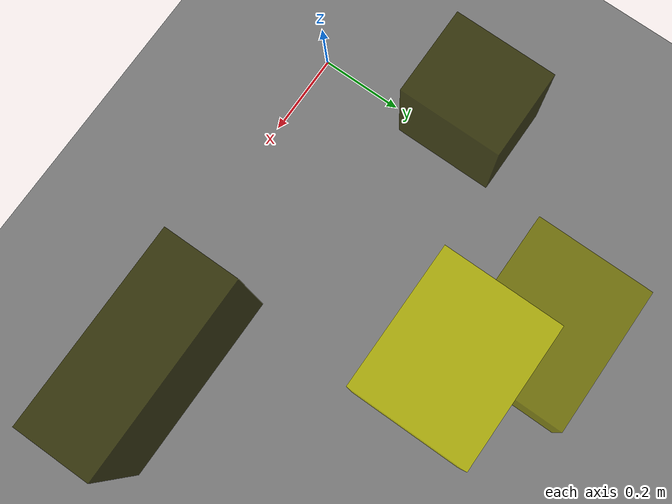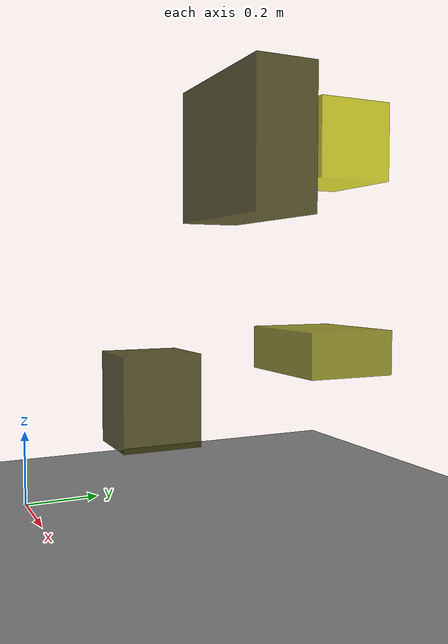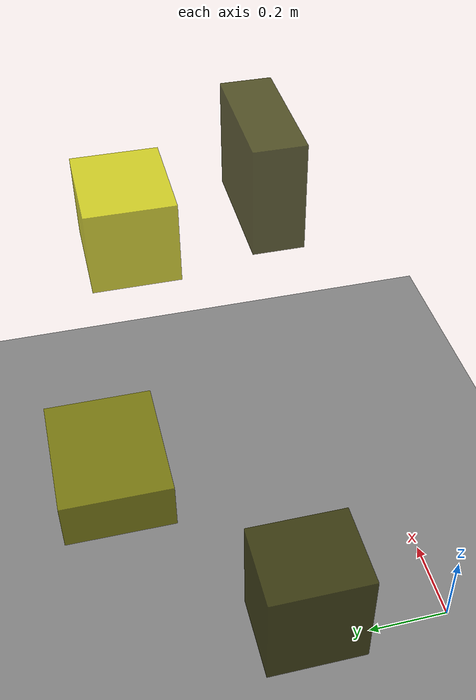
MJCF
<?xml version="1.0"?>
<mujoco model="obstacle_scene">
  <compiler angle="radian" coordinate="local"/>
  <option timestep="0.001" gravity="0 0 -9.81"/>

  <asset>
    <material name="obstacle_mat" rgba="0.8 0.8 0.0 0.8"/>
    <material name="ground_mat" rgba="0.5 0.5 0.5 1"/>
  </asset>

  <worldbody>
    <!-- Ground plane -->
    <geom name="ground" type="plane" size="3 3 0.1" material="ground_mat"/>

    <!-- Obstacles -->
    <body name="obstacle_0" pos="-0.028382 0.372980 0.262439">
      <geom name="obs_0" type="box" size="0.100515 0.116724 0.135299" rgba="0.2 0.2 0.0 0.8"/>
    </body>
    <body name="obstacle_1" pos="0.300554 0.743164 0.420252">
      <geom name="obs_1" type="box" size="0.151141 0.122705 0.058967" rgba="0.5 0.5 0.0 0.8"/>
    </body>
    <body name="obstacle_2" pos="0.499647 0.630943 0.927669">
      <geom name="obs_2" type="box" size="0.109882 0.091429 0.089887" rgba="0.8 0.8 0.0 0.8"/>
    </body>
    <body name="obstacle_3" pos="0.734639 0.282189 0.861517">
      <geom name="obs_3" type="box" size="0.157610 0.060938 0.132886" rgba="0.2 0.2 0.0 0.8"/>
    </body>
  </worldbody>
</mujoco>
